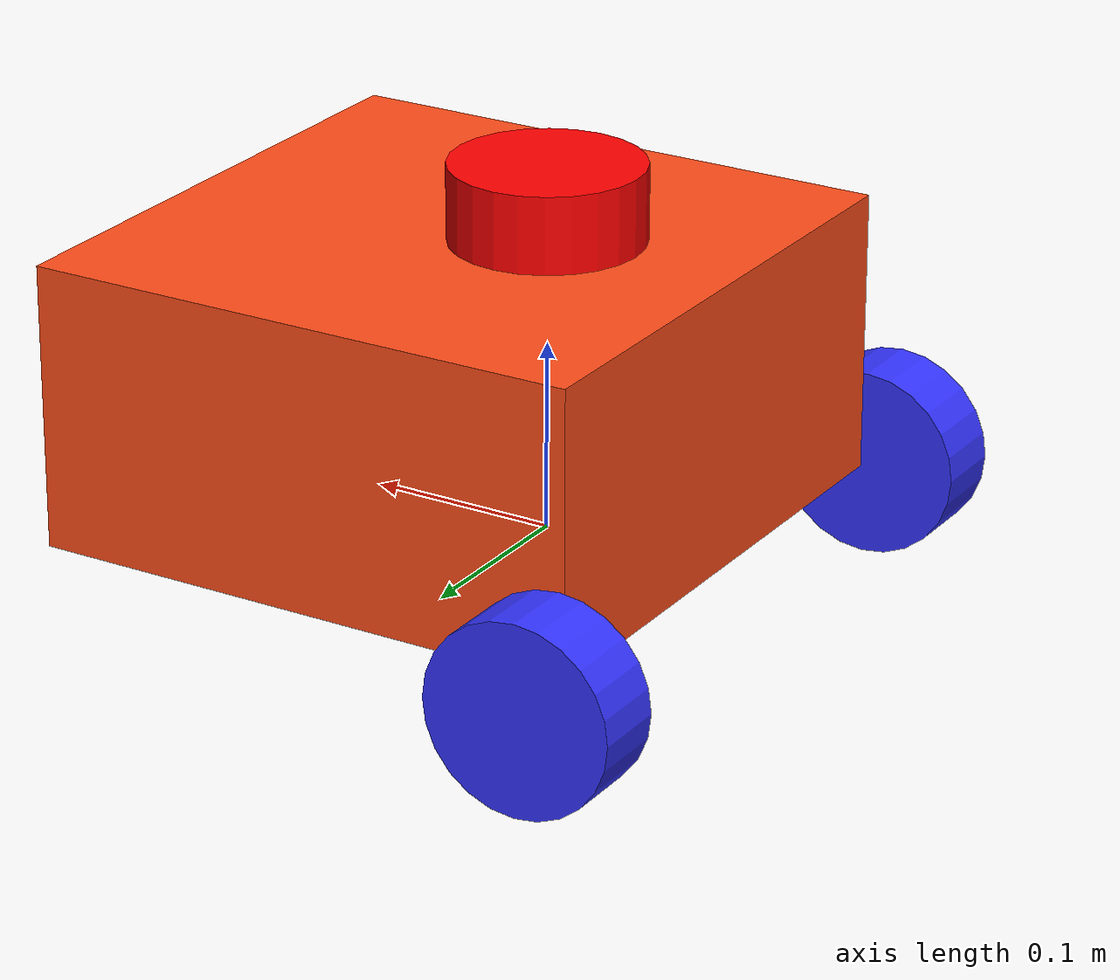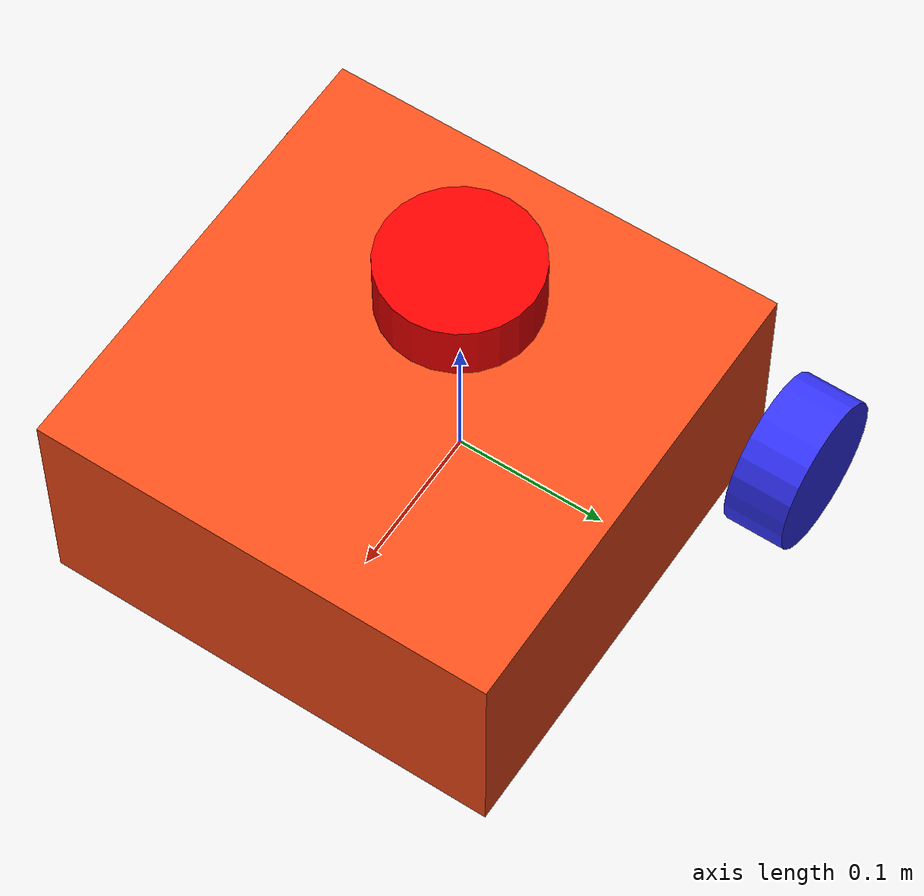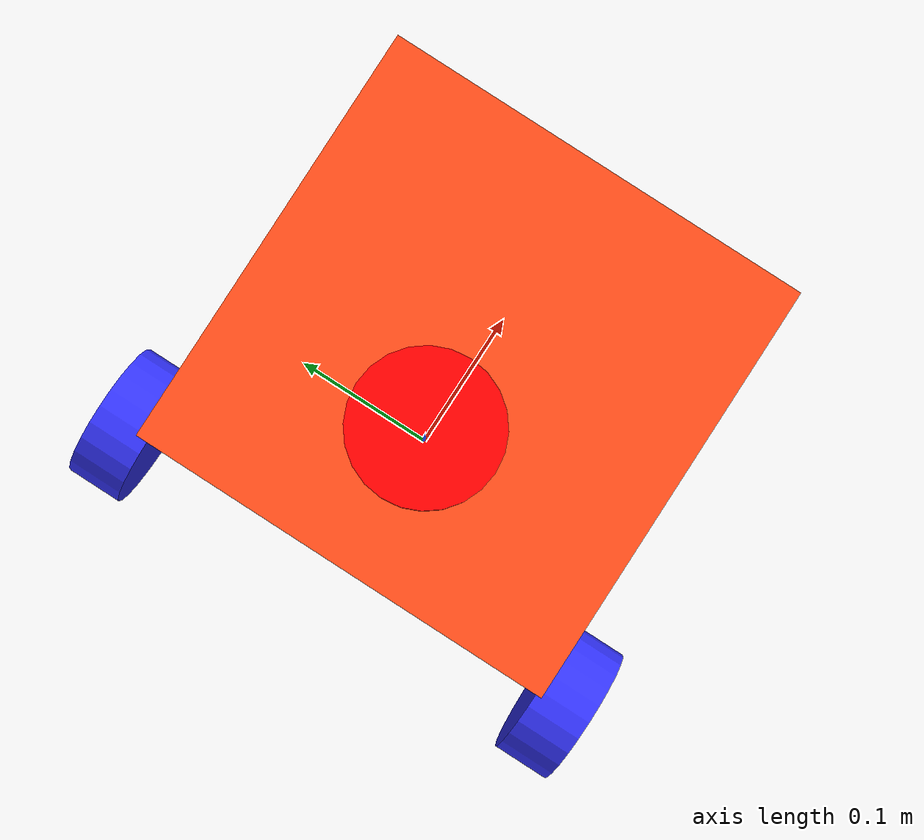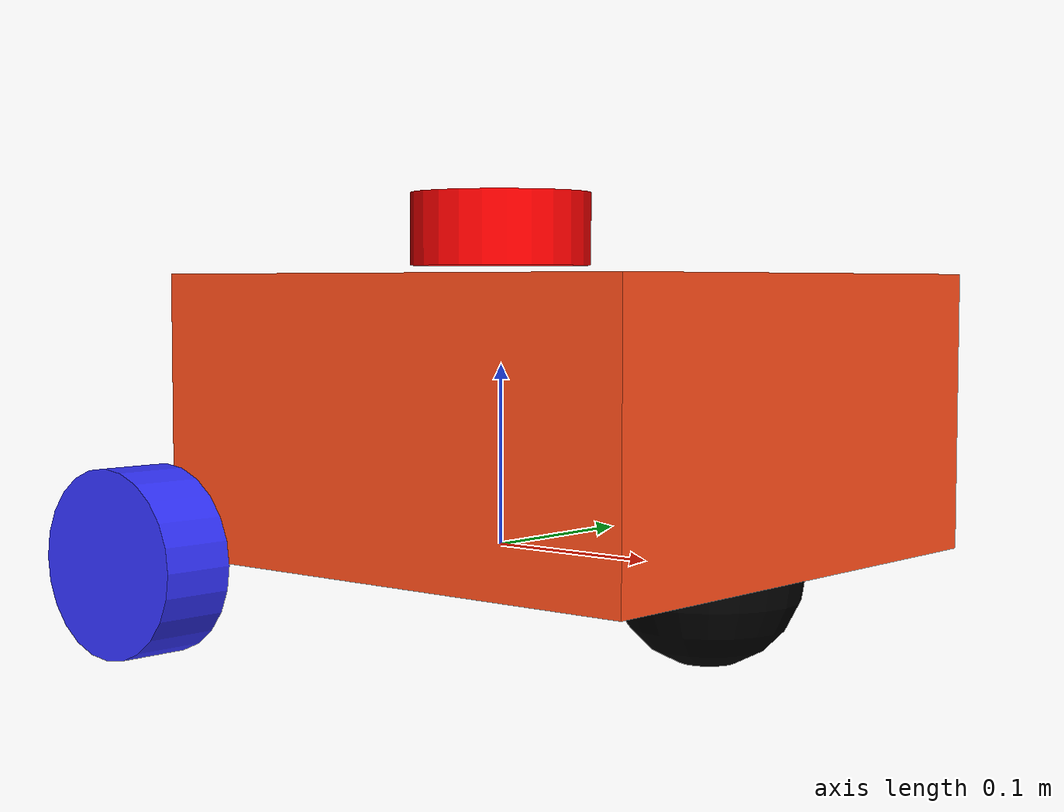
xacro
<?xml version="1.0"?>
<robot xmlns:xacro="http://www.ros.org/wiki/xacro" >

    <xacro:include filename="inertial_macros.xacro"/>

    <material name="white">
        <color rgba="1 1 1 1" />
    </material>

    <material name="orange">
        <color rgba="1 0.3 0.1 1"/>
    </material>

    <material name="blue">
        <color rgba="0.2 0.2 1 1"/>
    </material>

    <material name="black">
        <color rgba="0 0 0 1"/>
    </material>

    <material name="red">
        <color rgba="1 0 0 1"/>
    </material>

    <!-- BASE LINK -->

    <link name="base_link">

    </link>

    <!-- CHASSIS LINK -->

    <joint name="chassis_joint" type="fixed">
        <parent link="base_link"/>
        <child link="chassis"/>
        <origin xyz="-0.1 0 0"/>
    </joint>

    <link name="chassis">
        <visual>
            <origin xyz="0.15 0 0.075"/>
            <geometry>
                <box size="0.3 0.3 0.15"/>
            </geometry>
            <material name="orange"/>
        </visual>
        <collision>
            <origin xyz="0.15 0 0.075"/>
            <geometry>
                <box size="0.3 0.3 0.15"/>
            </geometry>
        </collision>
        <xacro:inertial_box mass="0.5" x="0.3" y="0.3" z="0.15">
            <origin xyz="0.15 0 0.075" rpy="0 0 0"/>
        </xacro:inertial_box>
    </link>

    <gazebo reference="chassis">
        <material>Gazebo/White</material>
    </gazebo>

    <joint name="laser_joint" type="revolute">
        <parent link="chassis"/>
        <child link="laser_frame"/>
        <origin xyz="0.1 0 0.175" rpy="0 0 0"/>
        <axis rpy="0 0 0" xyz="1 0 0" />
        <limit effort="0.1" lower="-0.6" upper="0.6" velocity="0.2"/>
    </joint>

    <link name="laser_frame">
        <visual>
            <geometry>
                <cylinder radius="0.05" length="0.04"/>
            </geometry>
            <material name="red"/>
        </visual>
        <collision>
            <geometry>
                <cylinder radius="0.05" length="0.04"/>
            </geometry>
        </collision>
        <xacro:inertial_cylinder mass="0.1" length="0.04" radius="0.05">
            <origin xyz="0 0 0" rpy="0 0 0"/>
        </xacro:inertial_cylinder>
    </link>

    <!-- LEFT WHEEL LINK -->

    <joint name="left_wheel_joint" type="continuous">
        <parent link="chassis"/>
        <child link="left_wheel"/>
        <origin xyz="0 0.175 0" rpy="-${pi/2} 0 0" />
        <axis xyz="0 0 1"/>
    </joint>

    <link name="left_wheel">
        <visual>
            <geometry>
                <cylinder radius="0.05" length="0.04"/>
            </geometry>
            <material name="blue"/>
        </visual>
        <collision>
            <geometry>
                <cylinder radius="0.05" length="0.04"/>
            </geometry>
        </collision>
        <xacro:inertial_cylinder mass="0.1" length="0.04" radius="0.05">
            <origin xyz="0 0 0" rpy="0 0 0"/>
        </xacro:inertial_cylinder>
    </link>

    <gazebo reference="left_wheel">
        <material>Gazebo/Blue</material>
    </gazebo>

    <!-- RIGHT WHEEL LINK -->

    <joint name="right_wheel_joint" type="continuous">
        <parent link="chassis"/>
        <child link="right_wheel"/>
        <origin xyz="0 -0.175 0" rpy="${pi/2} 0 0" />
        <axis xyz="0 0 -1"/>
    </joint>

    <link name="right_wheel">
        <visual>
            <geometry>
                <cylinder radius="0.05" length="0.04"/>
            </geometry>
            <material name="blue"/>
        </visual>
        <collision>
            <geometry>
                <cylinder radius="0.05" length="0.04"/>
            </geometry>
        </collision>
        <xacro:inertial_cylinder mass="0.1" length="0.04" radius="0.05">
            <origin xyz="0 0 0" rpy="0 0 0"/>
        </xacro:inertial_cylinder>
    </link>

    <gazebo reference="right_wheel">
        <material>Gazebo/Blue</material>
    </gazebo>

    <!-- CASTER WHEEL LINK -->

    <joint name="caster_wheel_joint" type="fixed">
        <parent link="chassis"/>
        <child link="caster_wheel"/>
        <origin xyz="0.24 0 0"/>
    </joint>

    <link name="caster_wheel">
        <visual>
            <geometry>
                <sphere radius="0.05"/>
            </geometry>
            <material name="black"/>
        </visual>
        <collision>
            <geometry>
                <sphere radius="0.05"/>
            </geometry>
        </collision>
        <xacro:inertial_sphere mass="0.1" radius="0.05">
            <origin xyz="0 0 0" rpy="0 0 0"/>
        </xacro:inertial_sphere>
    </link>

    <gazebo reference="caster_wheel">
        <material>Gazebo/Black</material>
        <mu1 value="0.001"/>
        <mu2 value="0.001"/>
    </gazebo>

</robot>
